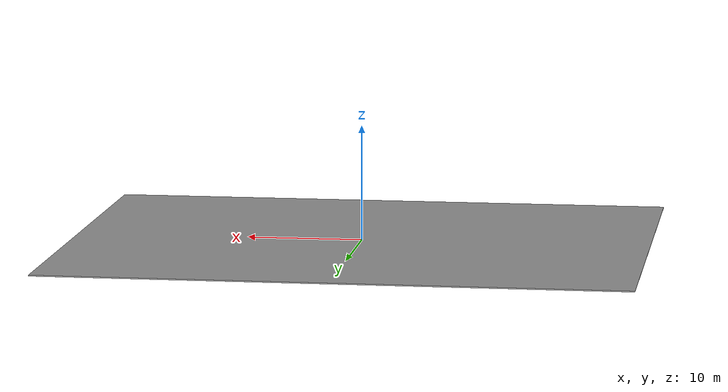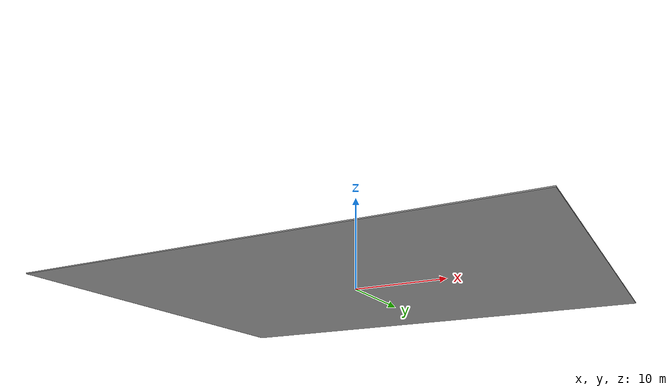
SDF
<?xml version="1.0" ?>
<sdf version="1.6">
  <model name="indoor_grid">
    <static>true</static>
    <link name="wall_link">
      <collision name="wall_collision">
        <geometry>
          <height_map>
            <uri>file://$(find ros2_astar_dstar_lite)/maps/indoor_grid.png</uri>
            <size>50 40 2.0</size>   <!-- 1000×800 px @ 0.05 m → 50 m × 40 m × 2 m high walls -->
            <pos>0 0 1.0</pos>
          </height_map>
        </geometry>
      </collision>
      <visual name="wall_visual">
        <geometry>
          <box><size>50 40 0.1</size></box>
        </geometry>
        <material>
          <script>
            <uri>file://media/materials/scripts/gazebo.material</uri>
            <name>Gazebo/Grey</name>
          </script>
        </material>
      </visual>
    </link>
  </model>
</sdf>
